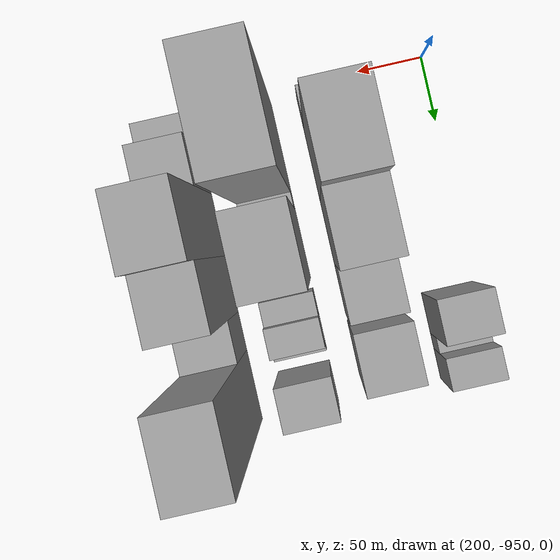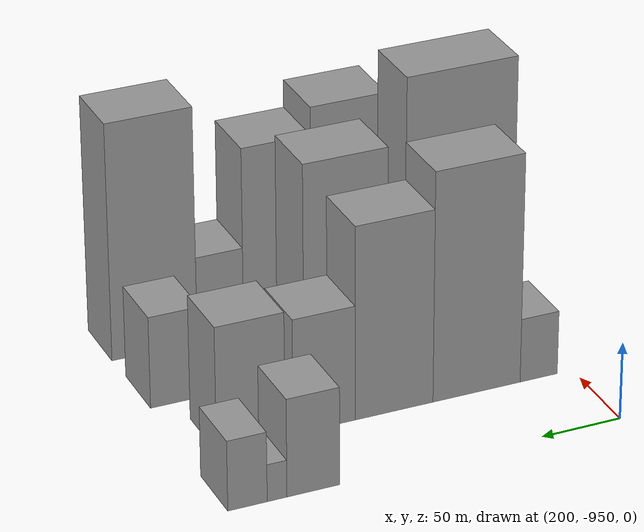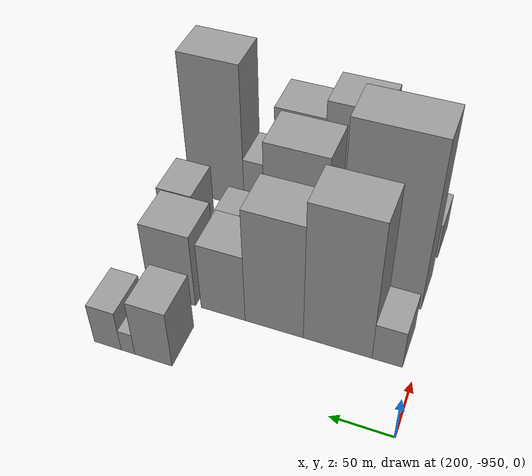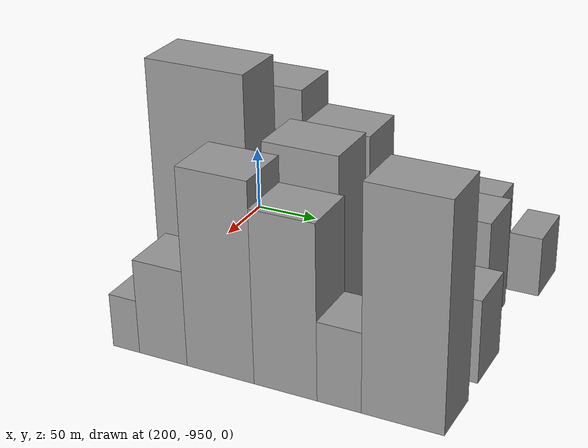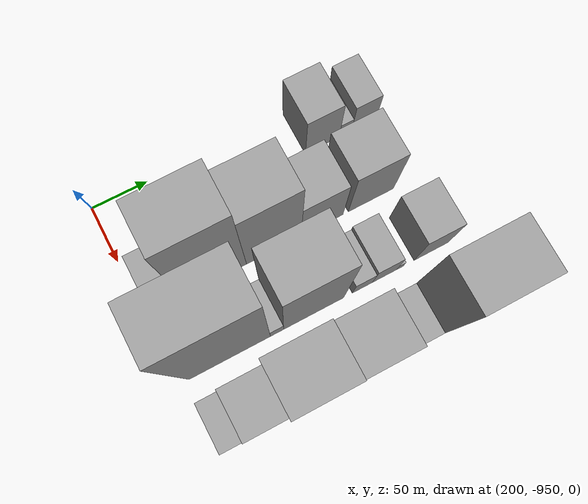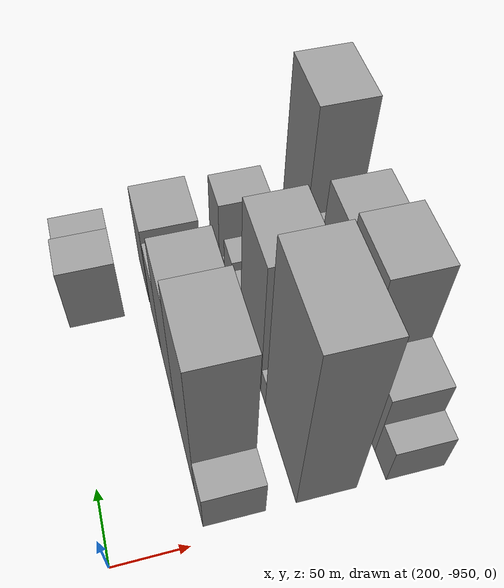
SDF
<sdf version="1.6">
 <world name="default">
  <model name="building_123">
   <static>1</static>
   <pose>220.0000 -758.0479 0 0.000000 0.000000 0.000000</pose>
   <link name="link">
    <pose>0 0 31.50 0 0 0</pose>
    <collision name="collision"><geometry><box><size>40.0000 31.8817 63.0000</size></box></geometry></collision>
    <visual name="visual">
     <cast_shadows>0</cast_shadows>
     <geometry><box><size>40.0000 31.8817 63.0000</size></box></geometry>
     <material>
      <script>
       <uri>model://grey_wall/materials/scripts</uri>
       <uri>model://grey_wall/materials/textures</uri>
       <name>vrc/grey_wall</name>
      </script>
     </material>
    </visual>
   </link>
  </model>
  <model name="building_124">
   <static>1</static>
   <pose>220.0000 -736.1623 0 0.000000 0.000000 0.000000</pose>
   <link name="link">
    <pose>0 0 12.00 0 0 0</pose>
    <collision name="collision"><geometry><box><size>40.0000 11.8896 24.0000</size></box></geometry></collision>
    <visual name="visual">
     <cast_shadows>0</cast_shadows>
     <geometry><box><size>40.0000 11.8896 24.0000</size></box></geometry>
     <material>
      <script>
       <uri>model://grey_wall/materials/scripts</uri>
       <uri>model://grey_wall/materials/textures</uri>
       <name>vrc/grey_wall</name>
      </script>
     </material>
    </visual>
   </link>
  </model>
  <model name="building_125">
   <static>1</static>
   <pose>220.0000 -718.4444 0 0.000000 0.000000 0.000000</pose>
   <link name="link">
    <pose>0 0 22.50 0 0 0</pose>
    <collision name="collision"><geometry><box><size>40.0000 23.5461 45.0000</size></box></geometry></collision>
    <visual name="visual">
     <cast_shadows>0</cast_shadows>
     <geometry><box><size>40.0000 23.5461 45.0000</size></box></geometry>
     <material>
      <script>
       <uri>model://grey_wall/materials/scripts</uri>
       <uri>model://grey_wall/materials/textures</uri>
       <name>vrc/grey_wall</name>
      </script>
     </material>
    </visual>
   </link>
  </model>
  <model name="building_175">
   <static>1</static>
   <pose>280.0000 -927.8735 0 0.000000 0.000000 0.000000</pose>
   <link name="link">
    <pose>0 0 21.00 0 0 0</pose>
    <collision name="collision"><geometry><box><size>40.0000 24.2530 42.0000</size></box></geometry></collision>
    <visual name="visual">
     <cast_shadows>0</cast_shadows>
     <geometry><box><size>40.0000 24.2530 42.0000</size></box></geometry>
     <material>
      <script>
       <uri>model://grey_wall/materials/scripts</uri>
       <uri>model://grey_wall/materials/textures</uri>
       <name>vrc/grey_wall</name>
      </script>
     </material>
    </visual>
   </link>
  </model>
  <model name="building_176">
   <static>1</static>
   <pose>280.0000 -887.6400 0 0.000000 0.000000 0.000000</pose>
   <link name="link">
    <pose>0 0 75.00 0 0 0</pose>
    <collision name="collision"><geometry><box><size>40.0000 56.2140 150.0000</size></box></geometry></collision>
    <visual name="visual">
     <cast_shadows>0</cast_shadows>
     <geometry><box><size>40.0000 56.2140 150.0000</size></box></geometry>
     <material>
      <script>
       <uri>model://grey_wall/materials/scripts</uri>
       <uri>model://grey_wall/materials/textures</uri>
       <name>vrc/grey_wall</name>
      </script>
     </material>
    </visual>
   </link>
  </model>
  <model name="building_177">
   <static>1</static>
   <pose>280.0000 -834.8548 0 0.000000 0.000000 0.000000</pose>
   <link name="link">
    <pose>0 0 63.00 0 0 0</pose>
    <collision name="collision"><geometry><box><size>40.0000 49.3564 126.0000</size></box></geometry></collision>
    <visual name="visual">
     <cast_shadows>0</cast_shadows>
     <geometry><box><size>40.0000 49.3564 126.0000</size></box></geometry>
     <material>
      <script>
       <uri>model://grey_wall/materials/scripts</uri>
       <uri>model://grey_wall/materials/textures</uri>
       <name>vrc/grey_wall</name>
      </script>
     </material>
    </visual>
   </link>
  </model>
  <model name="building_178">
   <static>1</static>
   <pose>280.0000 -790.8619 0 0.000000 0.000000 0.000000</pose>
   <link name="link">
    <pose>0 0 37.50 0 0 0</pose>
    <collision name="collision"><geometry><box><size>40.0000 38.6294 75.0000</size></box></geometry></collision>
    <visual name="visual">
     <cast_shadows>0</cast_shadows>
     <geometry><box><size>40.0000 38.6294 75.0000</size></box></geometry>
     <material>
      <script>
       <uri>model://grey_wall/materials/scripts</uri>
       <uri>model://grey_wall/materials/textures</uri>
       <name>vrc/grey_wall</name>
      </script>
     </material>
    </visual>
   </link>
  </model>
  <model name="building_179">
   <static>1</static>
   <pose>280.0000 -745.4751 0 0.000000 0.000000 0.000000</pose>
   <link name="link">
    <pose>0 0 40.50 0 0 0</pose>
    <collision name="collision"><geometry><box><size>40.0000 42.1442 81.0000</size></box></geometry></collision>
    <visual name="visual">
     <cast_shadows>0</cast_shadows>
     <geometry><box><size>40.0000 42.1442 81.0000</size></box></geometry>
     <material>
      <script>
       <uri>model://grey_wall/materials/scripts</uri>
       <uri>model://grey_wall/materials/textures</uri>
       <name>vrc/grey_wall</name>
      </script>
     </material>
    </visual>
   </link>
  </model>
  <model name="building_228">
   <static>1</static>
   <pose>340.0000 -904.6399 0 0.000000 0.000000 0.000000</pose>
   <link name="link">
    <pose>0 0 90.00 0 0 0</pose>
    <collision name="collision"><geometry><box><size>40.0000 70.7202 180.0000</size></box></geometry></collision>
    <visual name="visual">
     <cast_shadows>0</cast_shadows>
     <geometry><box><size>40.0000 70.7202 180.0000</size></box></geometry>
     <material>
      <script>
       <uri>model://grey_wall/materials/scripts</uri>
       <uri>model://grey_wall/materials/textures</uri>
       <name>vrc/grey_wall</name>
      </script>
     </material>
    </visual>
   </link>
  </model>
  <model name="building_229">
   <static>1</static>
   <pose>340.0000 -863.4860 0 0.000000 0.000000 0.000000</pose>
   <link name="link">
    <pose>0 0 13.50 0 0 0</pose>
    <collision name="collision"><geometry><box><size>40.0000 11.5876 27.0000</size></box></geometry></collision>
    <visual name="visual">
     <cast_shadows>0</cast_shadows>
     <geometry><box><size>40.0000 11.5876 27.0000</size></box></geometry>
     <material>
      <script>
       <uri>model://grey_wall/materials/scripts</uri>
       <uri>model://grey_wall/materials/textures</uri>
       <name>vrc/grey_wall</name>
      </script>
     </material>
    </visual>
   </link>
  </model>
  <model name="building_230">
   <static>1</static>
   <pose>340.0000 -830.8940 0 0.000000 0.000000 0.000000</pose>
   <link name="link">
    <pose>0 0 69.00 0 0 0</pose>
    <collision name="collision"><geometry><box><size>40.0000 53.5964 138.0000</size></box></geometry></collision>
    <visual name="visual">
     <cast_shadows>0</cast_shadows>
     <geometry><box><size>40.0000 53.5964 138.0000</size></box></geometry>
     <material>
      <script>
       <uri>model://grey_wall/materials/scripts</uri>
       <uri>model://grey_wall/materials/textures</uri>
       <name>vrc/grey_wall</name>
      </script>
     </material>
    </visual>
   </link>
  </model>
  <model name="building_231">
   <static>1</static>
   <pose>340.0000 -787.0546 0 0.000000 0.000000 0.000000</pose>
   <link name="link">
    <pose>0 0 16.50 0 0 0</pose>
    <collision name="collision"><geometry><box><size>40.0000 18.0823 33.0000</size></box></geometry></collision>
    <visual name="visual">
     <cast_shadows>0</cast_shadows>
     <geometry><box><size>40.0000 18.0823 33.0000</size></box></geometry>
     <material>
      <script>
       <uri>model://grey_wall/materials/scripts</uri>
       <uri>model://grey_wall/materials/textures</uri>
       <name>vrc/grey_wall</name>
      </script>
     </material>
    </visual>
   </link>
  </model>
  <model name="building_232">
   <static>1</static>
   <pose>340.0000 -766.8249 0 0.000000 0.000000 0.000000</pose>
   <link name="link">
    <pose>0 0 21.00 0 0 0</pose>
    <collision name="collision"><geometry><box><size>40.0000 22.3770 42.0000</size></box></geometry></collision>
    <visual name="visual">
     <cast_shadows>0</cast_shadows>
     <geometry><box><size>40.0000 22.3770 42.0000</size></box></geometry>
     <material>
      <script>
       <uri>model://grey_wall/materials/scripts</uri>
       <uri>model://grey_wall/materials/textures</uri>
       <name>vrc/grey_wall</name>
      </script>
     </material>
    </visual>
   </link>
  </model>
  <model name="building_233">
   <static>1</static>
   <pose>340.0000 -752.5726 0 0.000000 0.000000 0.000000</pose>
   <link name="link">
    <pose>0 0 7.50 0 0 0</pose>
    <collision name="collision"><geometry><box><size>40.0000 6.1278 15.0000</size></box></geometry></collision>
    <visual name="visual">
     <cast_shadows>0</cast_shadows>
     <geometry><box><size>40.0000 6.1278 15.0000</size></box></geometry>
     <material>
      <script>
       <uri>model://grey_wall/materials/scripts</uri>
       <uri>model://grey_wall/materials/textures</uri>
       <name>vrc/grey_wall</name>
      </script>
     </material>
    </visual>
   </link>
  </model>
  <model name="building_234">
   <static>1</static>
   <pose>340.0000 -723.6674 0 0.000000 0.000000 0.000000</pose>
   <link name="link">
    <pose>0 0 30.00 0 0 0</pose>
    <collision name="collision"><geometry><box><size>40.0000 31.6826 60.0000</size></box></geometry></collision>
    <visual name="visual">
     <cast_shadows>0</cast_shadows>
     <geometry><box><size>40.0000 31.6826 60.0000</size></box></geometry>
     <material>
      <script>
       <uri>model://grey_wall/materials/scripts</uri>
       <uri>model://grey_wall/materials/textures</uri>
       <name>vrc/grey_wall</name>
      </script>
     </material>
    </visual>
   </link>
  </model>
  <model name="building_285">
   <static>1</static>
   <pose>400.0000 -929.8584 0 0.000000 0.000000 0.000000</pose>
   <link name="link">
    <pose>0 0 19.50 0 0 0</pose>
    <collision name="collision"><geometry><box><size>40.0000 20.2833 39.0000</size></box></geometry></collision>
    <visual name="visual">
     <cast_shadows>0</cast_shadows>
     <geometry><box><size>40.0000 20.2833 39.0000</size></box></geometry>
     <material>
      <script>
       <uri>model://grey_wall/materials/scripts</uri>
       <uri>model://grey_wall/materials/textures</uri>
       <name>vrc/grey_wall</name>
      </script>
     </material>
    </visual>
   </link>
  </model>
  <model name="building_286">
   <static>1</static>
   <pose>400.0000 -901.7274 0 0.000000 0.000000 0.000000</pose>
   <link name="link">
    <pose>0 0 34.50 0 0 0</pose>
    <collision name="collision"><geometry><box><size>40.0000 35.9786 69.0000</size></box></geometry></collision>
    <visual name="visual">
     <cast_shadows>0</cast_shadows>
     <geometry><box><size>40.0000 35.9786 69.0000</size></box></geometry>
     <material>
      <script>
       <uri>model://grey_wall/materials/scripts</uri>
       <uri>model://grey_wall/materials/textures</uri>
       <name>vrc/grey_wall</name>
      </script>
     </material>
    </visual>
   </link>
  </model>
  <model name="building_287">
   <static>1</static>
   <pose>400.0000 -859.3257 0 0.000000 0.000000 0.000000</pose>
   <link name="link">
    <pose>0 0 70.50 0 0 0</pose>
    <collision name="collision"><geometry><box><size>40.0000 48.8249 141.0000</size></box></geometry></collision>
    <visual name="visual">
     <cast_shadows>0</cast_shadows>
     <geometry><box><size>40.0000 48.8249 141.0000</size></box></geometry>
     <material>
      <script>
       <uri>model://grey_wall/materials/scripts</uri>
       <uri>model://grey_wall/materials/textures</uri>
       <name>vrc/grey_wall</name>
      </script>
     </material>
    </visual>
   </link>
  </model>
  <model name="building_288">
   <static>1</static>
   <pose>400.0000 -812.8994 0 0.000000 0.000000 0.000000</pose>
   <link name="link">
    <pose>0 0 61.50 0 0 0</pose>
    <collision name="collision"><geometry><box><size>40.0000 44.0276 123.0000</size></box></geometry></collision>
    <visual name="visual">
     <cast_shadows>0</cast_shadows>
     <geometry><box><size>40.0000 44.0276 123.0000</size></box></geometry>
     <material>
      <script>
       <uri>model://grey_wall/materials/scripts</uri>
       <uri>model://grey_wall/materials/textures</uri>
       <name>vrc/grey_wall</name>
      </script>
     </material>
    </visual>
   </link>
  </model>
  <model name="building_289">
   <static>1</static>
   <pose>400.0000 -775.9320 0 0.000000 0.000000 0.000000</pose>
   <link name="link">
    <pose>0 0 28.50 0 0 0</pose>
    <collision name="collision"><geometry><box><size>40.0000 29.9073 57.0000</size></box></geometry></collision>
    <visual name="visual">
     <cast_shadows>0</cast_shadows>
     <geometry><box><size>40.0000 29.9073 57.0000</size></box></geometry>
     <material>
      <script>
       <uri>model://grey_wall/materials/scripts</uri>
       <uri>model://grey_wall/materials/textures</uri>
       <name>vrc/grey_wall</name>
      </script>
     </material>
    </visual>
   </link>
  </model>
  <model name="building_290">
   <static>1</static>
   <pose>400.0000 -733.8763 0 0.000000 0.000000 0.000000</pose>
   <link name="link">
    <pose>0 0 78.00 0 0 0</pose>
    <collision name="collision"><geometry><box><size>40.0000 54.2040 156.0000</size></box></geometry></collision>
    <visual name="visual">
     <cast_shadows>0</cast_shadows>
     <geometry><box><size>40.0000 54.2040 156.0000</size></box></geometry>
     <material>
      <script>
       <uri>model://grey_wall/materials/scripts</uri>
       <uri>model://grey_wall/materials/textures</uri>
       <name>vrc/grey_wall</name>
      </script>
     </material>
    </visual>
   </link>
  </model>
 </world>
</sdf>
